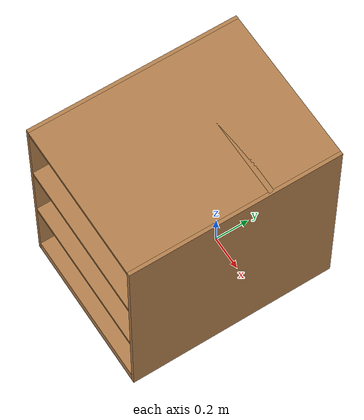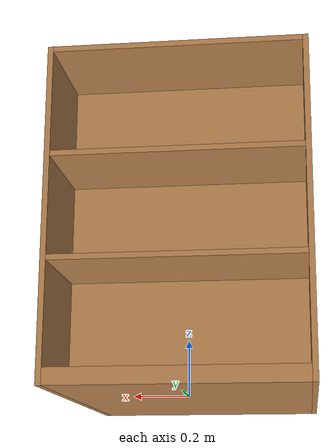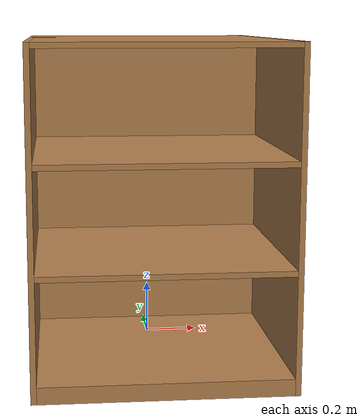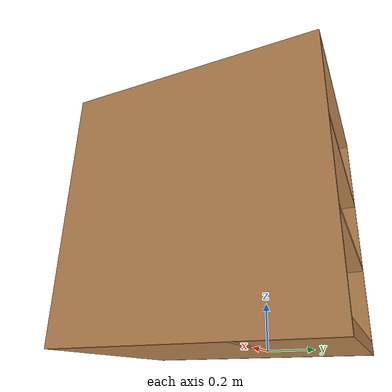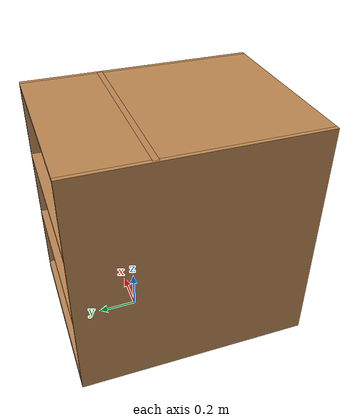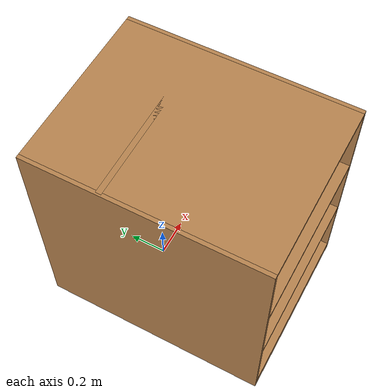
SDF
<?xml version='1.0'?>
<sdf version='1.6'>
  <model name='big_shelf'>
    <link name='link'>
      <pose frame=''>0 0 0 0 -0 0</pose>
      <inertial>
        <mass>2.956</mass>
        <inertia>
          <ixx>0.350055</ixx>
          <ixy>0</ixy>
          <ixz>0</ixz>
          <iyy>0.190859</iyy>
          <iyz>0</iyz>
          <izz>0.540716</izz>
        </inertia>
        <pose frame=''>0 0 0 0 -0 0</pose>
      </inertial>
      <self_collide>0</self_collide>
      <kinematic>0</kinematic>
      <gravity>1</gravity>
      <visual name='visual1'>
        <pose frame=''>0 0.005 0.6 0 -0 0</pose>
        <geometry>
          <box>
            <size>0.9 0.028207 1.2</size>
          </box>
        </geometry>
        <material>
          <script>
            <uri>file://media/materials/scripts/gazebo.material</uri>
            <name>Gazebo/Wood</name>
          </script>
          <shader type='pixel'>
            <normal_map>__default__</normal_map>
          </shader>
          <ambient>1 1 1 1</ambient>
          <diffuse>1 1 1 1</diffuse>
          <specular>0.2 0.2 0.2 1</specular>
          <emissive>0 0 0 1</emissive>
        </material>
        <transparency>0</transparency>
        <cast_shadows>1</cast_shadows>
      </visual>
      <visual name='visual2'>
        <pose frame=''>0.45 -0.195 0.6 0 -0 0</pose>
        <geometry>
          <box>
            <size>0.02 1.19192 1.2</size>
          </box>
        </geometry>
        <material>
          <script>
            <uri>file://media/materials/scripts/gazebo.material</uri>
            <name>Gazebo/Wood</name>
          </script>
          <shader type='pixel'>
            <normal_map>__default__</normal_map>
          </shader>
          <ambient>1 1 1 1</ambient>
          <diffuse>1 1 1 1</diffuse>
          <specular>0.2 0.2 0.2 1</specular>
          <emissive>0 0 0 1</emissive>
        </material>
        <transparency>0</transparency>
        <cast_shadows>1</cast_shadows>
      </visual>
      <visual name='visual3'>
        <pose frame=''>-0.45 -0.195 0.6 0 -0 0</pose>
        <geometry>
          <box>
            <size>0.02 1.19192 1.2</size>
          </box>
        </geometry>
        <material>
          <script>
            <uri>file://media/materials/scripts/gazebo.material</uri>
            <name>Gazebo/Wood</name>
          </script>
          <shader type='pixel'>
            <normal_map>__default__</normal_map>
          </shader>
          <ambient>1 1 1 1</ambient>
          <diffuse>1 1 1 1</diffuse>
          <specular>0.2 0.2 0.2 1</specular>
          <emissive>0 0 0 1</emissive>
        </material>
        <transparency>0</transparency>
        <cast_shadows>1</cast_shadows>
      </visual>
      <visual name='visual4'>
        <pose frame=''>0 -0.195 0.03 0 -0 0</pose>
        <geometry>
          <box>
            <size>0.88 1.19192 0.06</size>
          </box>
        </geometry>
        <material>
          <script>
            <uri>file://media/materials/scripts/gazebo.material</uri>
            <name>Gazebo/Wood</name>
          </script>
          <shader type='pixel'>
            <normal_map>__default__</normal_map>
          </shader>
          <ambient>1 1 1 1</ambient>
          <diffuse>1 1 1 1</diffuse>
          <specular>0.2 0.2 0.2 1</specular>
          <emissive>0 0 0 1</emissive>
        </material>
        <transparency>0</transparency>
        <cast_shadows>1</cast_shadows>
      </visual>
      <visual name='visual5'>
        <pose frame=''>0 -0.195 1.19 0 -0 0</pose>
        <geometry>
          <box>
            <size>0.88 1.19192 0.02</size>
          </box>
        </geometry>
        <material>
          <script>
            <uri>file://media/materials/scripts/gazebo.material</uri>
            <name>Gazebo/Wood</name>
          </script>
          <shader type='pixel'>
            <normal_map>__default__</normal_map>
          </shader>
          <ambient>1 1 1 1</ambient>
          <diffuse>1 1 1 1</diffuse>
          <specular>0.2 0.2 0.2 1</specular>
          <emissive>0 0 0 1</emissive>
        </material>
        <transparency>0</transparency>
        <cast_shadows>1</cast_shadows>
      </visual>
      <visual name='visual6'>
        <pose frame=''>0 -0.195 0.43 0 -0 0</pose>
        <geometry>
          <box>
            <size>0.88 1.19192 0.02</size>
          </box>
        </geometry>
        <material>
          <script>
            <uri>file://media/materials/scripts/gazebo.material</uri>
            <name>Gazebo/Wood</name>
          </script>
          <shader type='pixel'>
            <normal_map>__default__</normal_map>
          </shader>
          <ambient>1 1 1 1</ambient>
          <diffuse>1 1 1 1</diffuse>
          <specular>0.2 0.2 0.2 1</specular>
          <emissive>0 0 0 1</emissive>
        </material>
        <transparency>0</transparency>
        <cast_shadows>1</cast_shadows>
      </visual>
      <visual name='visual7'>
        <pose frame=''>0 -0.195 0.8 0 -0 0</pose>
        <geometry>
          <box>
            <size>0.88 1.19192 0.02</size>
          </box>
        </geometry>
        <material>
          <script>
            <uri>file://media/materials/scripts/gazebo.material</uri>
            <name>Gazebo/Wood</name>
          </script>
          <shader type='pixel'>
            <normal_map>__default__</normal_map>
          </shader>
          <ambient>1 1 1 1</ambient>
          <diffuse>1 1 1 1</diffuse>
          <specular>0.2 0.2 0.2 1</specular>
          <emissive>0 0 0 1</emissive>
        </material>
        <transparency>0</transparency>
        <cast_shadows>1</cast_shadows>
      </visual>
      <collision name='back'>
        <laser_retro>0</laser_retro>
        <max_contacts>10</max_contacts>
        <pose frame=''>0 0.005 0.6 0 -0 0</pose>
        <geometry>
          <box>
            <size>0.9 0.028207 1.2</size>
          </box>
        </geometry>
        <surface>
          <friction>
            <ode>
              <mu>1</mu>
              <mu2>1</mu2>
              <fdir1>0 0 0</fdir1>
              <slip1>0</slip1>
              <slip2>0</slip2>
            </ode>
            <torsional>
              <coefficient>1</coefficient>
              <patch_radius>0</patch_radius>
              <surface_radius>0</surface_radius>
              <use_patch_radius>1</use_patch_radius>
              <ode>
                <slip>0</slip>
              </ode>
            </torsional>
          </friction>
          <bounce>
            <restitution_coefficient>0</restitution_coefficient>
            <threshold>1e+06</threshold>
          </bounce>
          <contact>
            <collide_without_contact>0</collide_without_contact>
            <collide_without_contact_bitmask>1</collide_without_contact_bitmask>
            <collide_bitmask>1</collide_bitmask>
            <ode>
              <soft_cfm>0</soft_cfm>
              <soft_erp>0.2</soft_erp>
              <kp>1e+13</kp>
              <kd>1</kd>
              <max_vel>0.01</max_vel>
              <min_depth>0</min_depth>
            </ode>
            <bullet>
              <split_impulse>1</split_impulse>
              <split_impulse_penetration_threshold>-0.01</split_impulse_penetration_threshold>
              <soft_cfm>0</soft_cfm>
              <soft_erp>0.2</soft_erp>
              <kp>1e+13</kp>
              <kd>1</kd>
            </bullet>
          </contact>
        </surface>
      </collision>
      <collision name='left_side'>
        <laser_retro>0</laser_retro>
        <max_contacts>10</max_contacts>
        <pose frame=''>0.45 -0.195 0.6 0 -0 0</pose>
        <geometry>
          <box>
            <size>0.02 1.19192 1.2</size>
          </box>
        </geometry>
        <surface>
          <friction>
            <ode>
              <mu>1</mu>
              <mu2>1</mu2>
              <fdir1>0 0 0</fdir1>
              <slip1>0</slip1>
              <slip2>0</slip2>
            </ode>
            <torsional>
              <coefficient>1</coefficient>
              <patch_radius>0</patch_radius>
              <surface_radius>0</surface_radius>
              <use_patch_radius>1</use_patch_radius>
              <ode>
                <slip>0</slip>
              </ode>
            </torsional>
          </friction>
          <bounce>
            <restitution_coefficient>0</restitution_coefficient>
            <threshold>1e+06</threshold>
          </bounce>
          <contact>
            <collide_without_contact>0</collide_without_contact>
            <collide_without_contact_bitmask>1</collide_without_contact_bitmask>
            <collide_bitmask>1</collide_bitmask>
            <ode>
              <soft_cfm>0</soft_cfm>
              <soft_erp>0.2</soft_erp>
              <kp>1e+13</kp>
              <kd>1</kd>
              <max_vel>0.01</max_vel>
              <min_depth>0</min_depth>
            </ode>
            <bullet>
              <split_impulse>1</split_impulse>
              <split_impulse_penetration_threshold>-0.01</split_impulse_penetration_threshold>
              <soft_cfm>0</soft_cfm>
              <soft_erp>0.2</soft_erp>
              <kp>1e+13</kp>
              <kd>1</kd>
            </bullet>
          </contact>
        </surface>
      </collision>
      <collision name='right_side'>
        <laser_retro>0</laser_retro>
        <max_contacts>10</max_contacts>
        <pose frame=''>-0.45 -0.195 0.6 0 -0 0</pose>
        <geometry>
          <box>
            <size>0.02 1.19192 1.2</size>
          </box>
        </geometry>
        <surface>
          <friction>
            <ode>
              <mu>1</mu>
              <mu2>1</mu2>
              <fdir1>0 0 0</fdir1>
              <slip1>0</slip1>
              <slip2>0</slip2>
            </ode>
            <torsional>
              <coefficient>1</coefficient>
              <patch_radius>0</patch_radius>
              <surface_radius>0</surface_radius>
              <use_patch_radius>1</use_patch_radius>
              <ode>
                <slip>0</slip>
              </ode>
            </torsional>
          </friction>
          <bounce>
            <restitution_coefficient>0</restitution_coefficient>
            <threshold>1e+06</threshold>
          </bounce>
          <contact>
            <collide_without_contact>0</collide_without_contact>
            <collide_without_contact_bitmask>1</collide_without_contact_bitmask>
            <collide_bitmask>1</collide_bitmask>
            <ode>
              <soft_cfm>0</soft_cfm>
              <soft_erp>0.2</soft_erp>
              <kp>1e+13</kp>
              <kd>1</kd>
              <max_vel>0.01</max_vel>
              <min_depth>0</min_depth>
            </ode>
            <bullet>
              <split_impulse>1</split_impulse>
              <split_impulse_penetration_threshold>-0.01</split_impulse_penetration_threshold>
              <soft_cfm>0</soft_cfm>
              <soft_erp>0.2</soft_erp>
              <kp>1e+13</kp>
              <kd>1</kd>
            </bullet>
          </contact>
        </surface>
      </collision>
      <collision name='bottom'>
        <laser_retro>0</laser_retro>
        <max_contacts>10</max_contacts>
        <pose frame=''>0 -0.195 0.03 0 -0 0</pose>
        <geometry>
          <box>
            <size>0.88 1.19192 0.06</size>
          </box>
        </geometry>
        <surface>
          <friction>
            <ode>
              <mu>1</mu>
              <mu2>1</mu2>
              <fdir1>0 0 0</fdir1>
              <slip1>0</slip1>
              <slip2>0</slip2>
            </ode>
            <torsional>
              <coefficient>1</coefficient>
              <patch_radius>0</patch_radius>
              <surface_radius>0</surface_radius>
              <use_patch_radius>1</use_patch_radius>
              <ode>
                <slip>0</slip>
              </ode>
            </torsional>
          </friction>
          <bounce>
            <restitution_coefficient>0</restitution_coefficient>
            <threshold>1e+06</threshold>
          </bounce>
          <contact>
            <collide_without_contact>0</collide_without_contact>
            <collide_without_contact_bitmask>1</collide_without_contact_bitmask>
            <collide_bitmask>1</collide_bitmask>
            <ode>
              <soft_cfm>0</soft_cfm>
              <soft_erp>0.2</soft_erp>
              <kp>1e+13</kp>
              <kd>1</kd>
              <max_vel>0.01</max_vel>
              <min_depth>0</min_depth>
            </ode>
            <bullet>
              <split_impulse>1</split_impulse>
              <split_impulse_penetration_threshold>-0.01</split_impulse_penetration_threshold>
              <soft_cfm>0</soft_cfm>
              <soft_erp>0.2</soft_erp>
              <kp>1e+13</kp>
              <kd>1</kd>
            </bullet>
          </contact>
        </surface>
      </collision>
      <collision name='top'>
        <laser_retro>0</laser_retro>
        <max_contacts>10</max_contacts>
        <pose frame=''>0 -0.195 1.19 0 -0 0</pose>
        <geometry>
          <box>
            <size>0.88 1.19192 0.02</size>
          </box>
        </geometry>
        <surface>
          <friction>
            <ode>
              <mu>1</mu>
              <mu2>1</mu2>
              <fdir1>0 0 0</fdir1>
              <slip1>0</slip1>
              <slip2>0</slip2>
            </ode>
            <torsional>
              <coefficient>1</coefficient>
              <patch_radius>0</patch_radius>
              <surface_radius>0</surface_radius>
              <use_patch_radius>1</use_patch_radius>
              <ode>
                <slip>0</slip>
              </ode>
            </torsional>
          </friction>
          <bounce>
            <restitution_coefficient>0</restitution_coefficient>
            <threshold>1e+06</threshold>
          </bounce>
          <contact>
            <collide_without_contact>0</collide_without_contact>
            <collide_without_contact_bitmask>1</collide_without_contact_bitmask>
            <collide_bitmask>1</collide_bitmask>
            <ode>
              <soft_cfm>0</soft_cfm>
              <soft_erp>0.2</soft_erp>
              <kp>1e+13</kp>
              <kd>1</kd>
              <max_vel>0.01</max_vel>
              <min_depth>0</min_depth>
            </ode>
            <bullet>
              <split_impulse>1</split_impulse>
              <split_impulse_penetration_threshold>-0.01</split_impulse_penetration_threshold>
              <soft_cfm>0</soft_cfm>
              <soft_erp>0.2</soft_erp>
              <kp>1e+13</kp>
              <kd>1</kd>
            </bullet>
          </contact>
        </surface>
      </collision>
      <collision name='low_shelf'>
        <laser_retro>0</laser_retro>
        <max_contacts>10</max_contacts>
        <pose frame=''>0 -0.195 0.43 0 -0 0</pose>
        <geometry>
          <box>
            <size>0.88 1.19192 0.02</size>
          </box>
        </geometry>
        <surface>
          <friction>
            <ode>
              <mu>1</mu>
              <mu2>1</mu2>
              <fdir1>0 0 0</fdir1>
              <slip1>0</slip1>
              <slip2>0</slip2>
            </ode>
            <torsional>
              <coefficient>1</coefficient>
              <patch_radius>0</patch_radius>
              <surface_radius>0</surface_radius>
              <use_patch_radius>1</use_patch_radius>
              <ode>
                <slip>0</slip>
              </ode>
            </torsional>
          </friction>
          <bounce>
            <restitution_coefficient>0</restitution_coefficient>
            <threshold>1e+06</threshold>
          </bounce>
          <contact>
            <collide_without_contact>0</collide_without_contact>
            <collide_without_contact_bitmask>1</collide_without_contact_bitmask>
            <collide_bitmask>1</collide_bitmask>
            <ode>
              <soft_cfm>0</soft_cfm>
              <soft_erp>0.2</soft_erp>
              <kp>1e+13</kp>
              <kd>1</kd>
              <max_vel>0.01</max_vel>
              <min_depth>0</min_depth>
            </ode>
            <bullet>
              <split_impulse>1</split_impulse>
              <split_impulse_penetration_threshold>-0.01</split_impulse_penetration_threshold>
              <soft_cfm>0</soft_cfm>
              <soft_erp>0.2</soft_erp>
              <kp>1e+13</kp>
              <kd>1</kd>
            </bullet>
          </contact>
        </surface>
      </collision>
      <collision name='high_shelf'>
        <laser_retro>0</laser_retro>
        <max_contacts>10</max_contacts>
        <pose frame=''>0 -0.195 0.8 0 -0 0</pose>
        <geometry>
          <box>
            <size>0.88 1.19192 0.02</size>
          </box>
        </geometry>
        <surface>
          <friction>
            <ode>
              <mu>1</mu>
              <mu2>1</mu2>
              <fdir1>0 0 0</fdir1>
              <slip1>0</slip1>
              <slip2>0</slip2>
            </ode>
            <torsional>
              <coefficient>1</coefficient>
              <patch_radius>0</patch_radius>
              <surface_radius>0</surface_radius>
              <use_patch_radius>1</use_patch_radius>
              <ode>
                <slip>0</slip>
              </ode>
            </torsional>
          </friction>
          <bounce>
            <restitution_coefficient>0</restitution_coefficient>
            <threshold>1e+06</threshold>
          </bounce>
          <contact>
            <collide_without_contact>0</collide_without_contact>
            <collide_without_contact_bitmask>1</collide_without_contact_bitmask>
            <collide_bitmask>1</collide_bitmask>
            <ode>
              <soft_cfm>0</soft_cfm>
              <soft_erp>0.2</soft_erp>
              <kp>1e+13</kp>
              <kd>1</kd>
              <max_vel>0.01</max_vel>
              <min_depth>0</min_depth>
            </ode>
            <bullet>
              <split_impulse>1</split_impulse>
              <split_impulse_penetration_threshold>-0.01</split_impulse_penetration_threshold>
              <soft_cfm>0</soft_cfm>
              <soft_erp>0.2</soft_erp>
              <kp>1e+13</kp>
              <kd>1</kd>
            </bullet>
          </contact>
        </surface>
      </collision>
    </link>
    <static>1</static>
    <allow_auto_disable>1</allow_auto_disable>
  </model>
</sdf>
